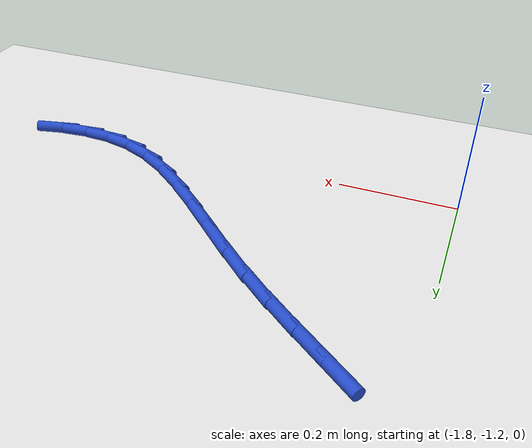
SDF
<sdf version="1.6">
 <world name="default">
  <model name="ground_plane">
   <static>1</static>
   <link name="link">
    <collision name="collision">
     <geometry><plane><normal>0 0 1</normal><size>100 100</size></plane></geometry>
     <surface><friction><ode><mu>100</mu><mu2>50</mu2></ode></friction></surface>
    </collision>
    <visual name="visual">
     <cast_shadows>0</cast_shadows>
     <geometry><plane><normal>0 0 1</normal><size>100 100</size></plane></geometry>
     <material>
      <script><uri>file://media/materials/scripts/gazebo.material</uri><name>Gazebo/WhiteGlow</name></script>
     </material>
    </visual>
   </link>
  </model>
  <model name="line">
   <link name="link_78">
    <pose>-1.7117147059338016 -0.7723989621188266 0.01 0 1.57 -0.6381153855644598</pose>
    <collision name="collision">
     <geometry><cylinder><radius>0.01</radius><length>0.08</length></cylinder></geometry>
    </collision>
    <visual name="visual">
     <material>
      <script><name>Gazebo/Blue</name><uri>file://media/materials/scripts/gazebo.material</uri></script>
     </material>
     <geometry><cylinder><radius>0.01</radius><length>0.08</length></cylinder></geometry>
    </visual>
   </link>
   <link name="link_79">
    <pose>-1.662949045648127 -0.8085644819218095 0.01 0 1.57 -0.6413156301450976</pose>
    <collision name="collision">
     <geometry><cylinder><radius>0.01</radius><length>0.08</length></cylinder></geometry>
    </collision>
    <visual name="visual">
     <material>
      <script><name>Gazebo/Blue</name><uri>file://media/materials/scripts/gazebo.material</uri></script>
     </material>
     <geometry><cylinder><radius>0.01</radius><length>0.08</length></cylinder></geometry>
    </visual>
   </link>
   <link name="link_80">
    <pose>-1.6135692554738008 -0.8454309776030914 0.01 0 1.57 -0.6610575941695706</pose>
    <collision name="collision">
     <geometry><cylinder><radius>0.01</radius><length>0.08</length></cylinder></geometry>
    </collision>
    <visual name="visual">
     <material>
      <script><name>Gazebo/Blue</name><uri>file://media/materials/scripts/gazebo.material</uri></script>
     </material>
     <geometry><cylinder><radius>0.01</radius><length>0.08</length></cylinder></geometry>
    </visual>
   </link>
   <link name="link_81">
    <pose>-1.564466233686892 -0.8836233536041479 0.01 0 1.57 -0.6971409375807373</pose>
    <collision name="collision">
     <geometry><cylinder><radius>0.01</radius><length>0.08</length></cylinder></geometry>
    </collision>
    <visual name="visual">
     <material>
      <script><name>Gazebo/Blue</name><uri>file://media/materials/scripts/gazebo.material</uri></script>
     </material>
     <geometry><cylinder><radius>0.01</radius><length>0.08</length></cylinder></geometry>
    </visual>
   </link>
   <link name="link_82">
    <pose>-1.516530267347119 -0.9237655398928633 0.01 0 1.57 -0.7391480796289651</pose>
    <collision name="collision">
     <geometry><cylinder><radius>0.01</radius><length>0.08</length></cylinder></geometry>
    </collision>
    <visual name="visual">
     <material>
      <script><name>Gazebo/Blue</name><uri>file://media/materials/scripts/gazebo.material</uri></script>
     </material>
     <geometry><cylinder><radius>0.01</radius><length>0.08</length></cylinder></geometry>
    </visual>
   </link>
   <link name="link_83">
    <pose>-1.4702939796609984 -0.9659112363073263 0.01 0 1.57 -0.7592915726650747</pose>
    <collision name="collision">
     <geometry><cylinder><radius>0.01</radius><length>0.08</length></cylinder></geometry>
    </collision>
    <visual name="visual">
     <material>
      <script><name>Gazebo/Blue</name><uri>file://media/materials/scripts/gazebo.material</uri></script>
     </material>
     <geometry><cylinder><radius>0.01</radius><length>0.08</length></cylinder></geometry>
    </visual>
   </link>
   <link name="link_84">
    <pose>-1.4253312273029168 -1.0085855633808853 0.01 0 1.57 -0.7527597079772324</pose>
    <collision name="collision">
     <geometry><cylinder><radius>0.01</radius><length>0.08</length></cylinder></geometry>
    </collision>
    <visual name="visual">
     <material>
      <script><name>Gazebo/Blue</name><uri>file://media/materials/scripts/gazebo.material</uri></script>
     </material>
     <geometry><cylinder><radius>0.01</radius><length>0.08</length></cylinder></geometry>
    </visual>
   </link>
   <link name="link_85">
    <pose>-1.3810568943059818 -1.050060188609743 0.01 0 1.57 -0.7175070099885218</pose>
    <collision name="collision">
     <geometry><cylinder><radius>0.01</radius><length>0.08</length></cylinder></geometry>
    </collision>
    <visual name="visual">
     <material>
      <script><name>Gazebo/Blue</name><uri>file://media/materials/scripts/gazebo.material</uri></script>
     </material>
     <geometry><cylinder><radius>0.01</radius><length>0.08</length></cylinder></geometry>
    </visual>
   </link>
   <link name="link_86">
    <pose>-1.3368858647033022 -1.0886067794901007 0.01 0 1.57 -0.649218036374073</pose>
    <collision name="collision">
     <geometry><cylinder><radius>0.01</radius><length>0.08</length></cylinder></geometry>
    </collision>
    <visual name="visual">
     <material>
      <script><name>Gazebo/Blue</name><uri>file://media/materials/scripts/gazebo.material</uri></script>
     </material>
     <geometry><cylinder><radius>0.01</radius><length>0.08</length></cylinder></geometry>
    </visual>
   </link>
   <link name="link_87">
    <pose>-1.2922330225279854 -1.1224970035181612 0.01 0 1.57 -0.5416033407701715</pose>
    <collision name="collision">
     <geometry><cylinder><radius>0.01</radius><length>0.08</length></cylinder></geometry>
    </collision>
    <visual name="visual">
     <material>
      <script><name>Gazebo/Blue</name><uri>file://media/materials/scripts/gazebo.material</uri></script>
     </material>
     <geometry><cylinder><radius>0.01</radius><length>0.08</length></cylinder></geometry>
    </visual>
   </link>
   <link name="link_88">
    <pose>-1.2465132518131388 -1.1500025281901267 0.01 0 1.57 -0.38872072778790934</pose>
    <collision name="collision">
     <geometry><cylinder><radius>0.01</radius><length>0.08</length></cylinder></geometry>
    </collision>
    <visual name="visual">
     <material>
      <script><name>Gazebo/Blue</name><uri>file://media/materials/scripts/gazebo.material</uri></script>
     </material>
     <geometry><cylinder><radius>0.01</radius><length>0.08</length></cylinder></geometry>
    </visual>
   </link>
   <link name="link_89">
    <pose>-1.1991442099261573 -1.1694030059830185 0.01 0 1.57 -0.20767187163268003</pose>
    <collision name="collision">
     <geometry><cylinder><radius>0.01</radius><length>0.08</length></cylinder></geometry>
    </collision>
    <visual name="visual">
     <material>
      <script><name>Gazebo/Blue</name><uri>file://media/materials/scripts/gazebo.material</uri></script>
     </material>
     <geometry><cylinder><radius>0.01</radius><length>0.08</length></cylinder></geometry>
    </visual>
   </link>
   <link name="link_90">
    <pose>-1.1498271414271402 -1.1797945932854357 0.01 0 1.57 -0.03896786364498227</pose>
    <collision name="collision">
     <geometry><cylinder><radius>0.01</radius><length>0.08</length></cylinder></geometry>
    </collision>
    <visual name="visual">
     <material>
      <script><name>Gazebo/Blue</name><uri>file://media/materials/scripts/gazebo.material</uri></script>
     </material>
     <geometry><cylinder><radius>0.01</radius><length>0.08</length></cylinder></geometry>
    </visual>
   </link>
   <link name="link_91">
    <pose>-1.0987881022989077 -1.1817844829168187 0.01 0 1.57 0.10708126595031352</pose>
    <collision name="collision">
     <geometry><cylinder><radius>0.01</radius><length>0.08</length></cylinder></geometry>
    </collision>
    <visual name="visual">
     <material>
      <script><name>Gazebo/Blue</name><uri>file://media/materials/scripts/gazebo.material</uri></script>
     </material>
     <geometry><cylinder><radius>0.01</radius><length>0.08</length></cylinder></geometry>
    </visual>
   </link>
   <link name="link_92">
    <pose>-1.0463099746528155 -1.1761434814190275 0.01 0 1.57 0.22899158740942477</pose>
    <collision name="collision">
     <geometry><cylinder><radius>0.01</radius><length>0.08</length></cylinder></geometry>
    </collision>
    <visual name="visual">
     <material>
      <script><name>Gazebo/Blue</name><uri>file://media/materials/scripts/gazebo.material</uri></script>
     </material>
     <geometry><cylinder><radius>0.01</radius><length>0.08</length></cylinder></geometry>
    </visual>
   </link>
  </model>
 </world>
</sdf>
